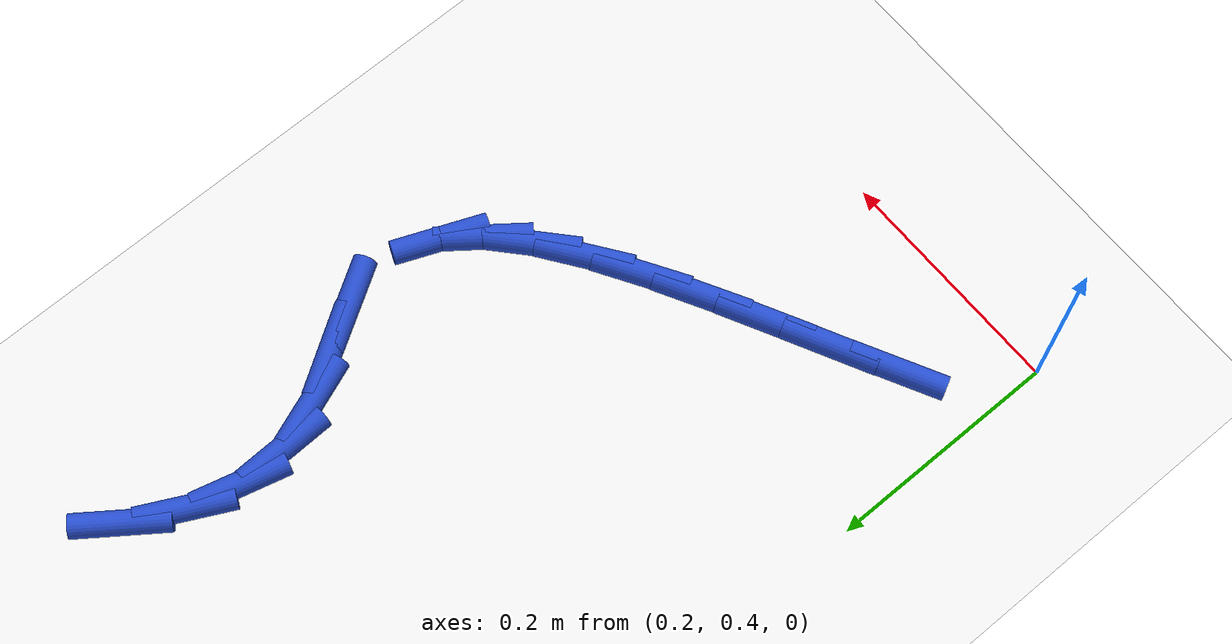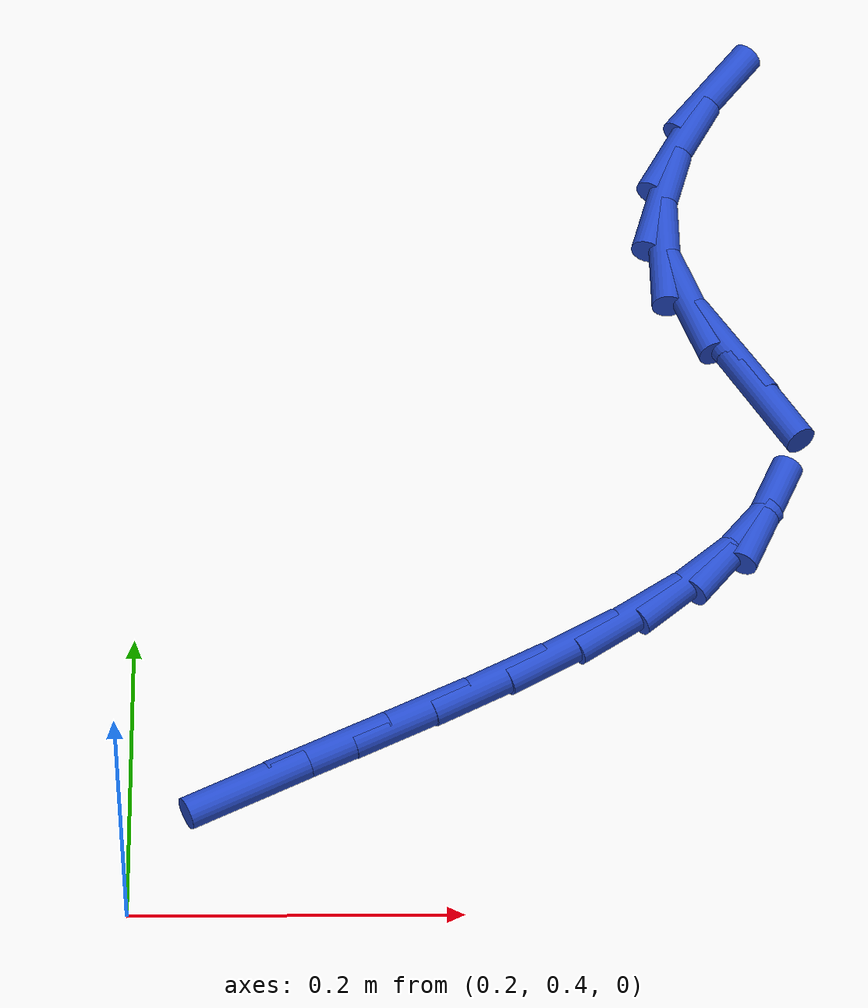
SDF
<sdf version="1.6">
 <world name="default">
  <model name="ground_plane">
   <static>1</static>
   <link name="link">
    <collision name="collision">
     <geometry><plane><normal>0 0 1</normal><size>100 100</size></plane></geometry>
     <surface><friction><ode><mu>100</mu><mu2>50</mu2></ode></friction></surface>
    </collision>
    <visual name="visual">
     <cast_shadows>0</cast_shadows>
     <geometry><plane><normal>0 0 1</normal><size>100 100</size></plane></geometry>
     <material>
      <script><uri>file://media/materials/scripts/gazebo.material</uri><name>Gazebo/WhiteGlow</name></script>
     </material>
    </visual>
   </link>
  </model>
  <model name="line">
   <link name="link_13">
    <pose>0.26960427789794333 0.48480843248125693 0.01 0 1.57 0.48041396956076166</pose>
    <collision name="collision">
     <geometry><cylinder><radius>0.01</radius><length>0.08</length></cylinder></geometry>
    </collision>
    <visual name="visual">
     <material>
      <script><name>Gazebo/Blue</name><uri>file://media/materials/scripts/gazebo.material</uri></script>
     </material>
     <geometry><cylinder><radius>0.01</radius><length>0.08</length></cylinder></geometry>
    </visual>
   </link>
   <link name="link_14">
    <pose>0.31877890638796014 0.510435157128976 0.01 0 1.57 0.47163036350103893</pose>
    <collision name="collision">
     <geometry><cylinder><radius>0.01</radius><length>0.08</length></cylinder></geometry>
    </collision>
    <visual name="visual">
     <material>
      <script><name>Gazebo/Blue</name><uri>file://media/materials/scripts/gazebo.material</uri></script>
     </material>
     <geometry><cylinder><radius>0.01</radius><length>0.08</length></cylinder></geometry>
    </visual>
   </link>
   <link name="link_15">
    <pose>0.36762824926220367 0.5353492327480962 0.01 0 1.57 0.478228815170522</pose>
    <collision name="collision">
     <geometry><cylinder><radius>0.01</radius><length>0.08</length></cylinder></geometry>
    </collision>
    <visual name="visual">
     <material>
      <script><name>Gazebo/Blue</name><uri>file://media/materials/scripts/gazebo.material</uri></script>
     </material>
     <geometry><cylinder><radius>0.01</radius><length>0.08</length></cylinder></geometry>
    </visual>
   </link>
   <link name="link_16">
    <pose>0.4149065218295573 0.5598564773889724 0.01 0 1.57 0.5020217879897807</pose>
    <collision name="collision">
     <geometry><cylinder><radius>0.01</radius><length>0.08</length></cylinder></geometry>
    </collision>
    <visual name="visual">
     <material>
      <script><name>Gazebo/Blue</name><uri>file://media/materials/scripts/gazebo.material</uri></script>
     </material>
     <geometry><cylinder><radius>0.01</radius><length>0.08</length></cylinder></geometry>
    </visual>
   </link>
   <link name="link_17">
    <pose>0.4593679393989038 0.5842627091019592 0.01 0 1.57 0.5471585881664179</pose>
    <collision name="collision">
     <geometry><cylinder><radius>0.01</radius><length>0.08</length></cylinder></geometry>
    </collision>
    <visual name="visual">
     <material>
      <script><name>Gazebo/Blue</name><uri>file://media/materials/scripts/gazebo.material</uri></script>
     </material>
     <geometry><cylinder><radius>0.01</radius><length>0.08</length></cylinder></geometry>
    </visual>
   </link>
   <link name="link_18">
    <pose>0.4997667172791266 0.6088737459374117 0.01 0 1.57 0.6213265562585064</pose>
    <collision name="collision">
     <geometry><cylinder><radius>0.01</radius><length>0.08</length></cylinder></geometry>
    </collision>
    <visual name="visual">
     <material>
      <script><name>Gazebo/Blue</name><uri>file://media/materials/scripts/gazebo.material</uri></script>
     </material>
     <geometry><cylinder><radius>0.01</radius><length>0.08</length></cylinder></geometry>
    </visual>
   </link>
   <link name="link_19">
    <pose>0.5348570707791087 0.6339954059456848 0.01 0 1.57 0.7377412203850204</pose>
    <collision name="collision">
     <geometry><cylinder><radius>0.01</radius><length>0.08</length></cylinder></geometry>
    </collision>
    <visual name="visual">
     <material>
      <script><name>Gazebo/Blue</name><uri>file://media/materials/scripts/gazebo.material</uri></script>
     </material>
     <geometry><cylinder><radius>0.01</radius><length>0.08</length></cylinder></geometry>
    </visual>
   </link>
   <link name="link_20">
    <pose>0.5633932152077336 0.6599335071771335 0.01 0 1.57 0.9169493140732314</pose>
    <collision name="collision">
     <geometry><cylinder><radius>0.01</radius><length>0.08</length></cylinder></geometry>
    </collision>
    <visual name="visual">
     <material>
      <script><name>Gazebo/Blue</name><uri>file://media/materials/scripts/gazebo.material</uri></script>
     </material>
     <geometry><cylinder><radius>0.01</radius><length>0.08</length></cylinder></geometry>
    </visual>
   </link>
   <link name="link_21">
    <pose>0.584129365873884 0.6869938676821125 0.01 0 1.57 1.1813952420875953</pose>
    <collision name="collision">
     <geometry><cylinder><radius>0.01</radius><length>0.08</length></cylinder></geometry>
    </collision>
    <visual name="visual">
     <material>
      <script><name>Gazebo/Blue</name><uri>file://media/materials/scripts/gazebo.material</uri></script>
     </material>
     <geometry><cylinder><radius>0.01</radius><length>0.08</length></cylinder></geometry>
    </visual>
   </link>
   <link name="link_24">
    <pose>0.5870800083863215 0.777966685341781 0.01 0 1.57 -1.0187099531825432</pose>
    <collision name="collision">
     <geometry><cylinder><radius>0.01</radius><length>0.08</length></cylinder></geometry>
    </collision>
    <visual name="visual">
     <material>
      <script><name>Gazebo/Blue</name><uri>file://media/materials/scripts/gazebo.material</uri></script>
     </material>
     <geometry><cylinder><radius>0.01</radius><length>0.08</length></cylinder></geometry>
    </visual>
   </link>
   <link name="link_25">
    <pose>0.5657666882009622 0.8125673808134006 0.01 0 1.57 -1.0012533243651964</pose>
    <collision name="collision">
     <geometry><cylinder><radius>0.01</radius><length>0.08</length></cylinder></geometry>
    </collision>
    <visual name="visual">
     <material>
      <script><name>Gazebo/Blue</name><uri>file://media/materials/scripts/gazebo.material</uri></script>
     </material>
     <geometry><cylinder><radius>0.01</radius><length>0.08</length></cylinder></geometry>
    </visual>
   </link>
   <link name="link_26">
    <pose>0.5419448777534217 0.8497701263460653 0.01 0 1.57 -1.2080535619510553</pose>
    <collision name="collision">
     <geometry><cylinder><radius>0.01</radius><length>0.08</length></cylinder></geometry>
    </collision>
    <visual name="visual">
     <material>
      <script><name>Gazebo/Blue</name><uri>file://media/materials/scripts/gazebo.material</uri></script>
     </material>
     <geometry><cylinder><radius>0.01</radius><length>0.08</length></cylinder></geometry>
    </visual>
   </link>
   <link name="link_27">
    <pose>0.5267493477515651 0.8898070973601989 0.01 0 1.57 -1.5409106943662398</pose>
    <collision name="collision">
     <geometry><cylinder><radius>0.01</radius><length>0.08</length></cylinder></geometry>
    </collision>
    <visual name="visual">
     <material>
      <script><name>Gazebo/Blue</name><uri>file://media/materials/scripts/gazebo.material</uri></script>
     </material>
     <geometry><cylinder><radius>0.01</radius><length>0.08</length></cylinder></geometry>
    </visual>
   </link>
   <link name="link_28">
    <pose>0.5254777672054546 0.9323426520433903 0.01 0 1.57 1.3179245771623167</pose>
    <collision name="collision">
     <geometry><cylinder><radius>0.01</radius><length>0.08</length></cylinder></geometry>
    </collision>
    <visual name="visual">
     <material>
      <script><name>Gazebo/Blue</name><uri>file://media/materials/scripts/gazebo.material</uri></script>
     </material>
     <geometry><cylinder><radius>0.01</radius><length>0.08</length></cylinder></geometry>
    </visual>
   </link>
   <link name="link_29">
    <pose>0.5368630202605317 0.9764026899581894 0.01 0 1.57 1.1046869276985878</pose>
    <collision name="collision">
     <geometry><cylinder><radius>0.01</radius><length>0.08</length></cylinder></geometry>
    </collision>
    <visual name="visual">
     <material>
      <script><name>Gazebo/Blue</name><uri>file://media/materials/scripts/gazebo.material</uri></script>
     </material>
     <geometry><cylinder><radius>0.01</radius><length>0.08</length></cylinder></geometry>
    </visual>
   </link>
   <link name="link_30">
    <pose>0.5592885813045332 1.0209791287959828 0.01 0 1.57 0.9451569806853171</pose>
    <collision name="collision">
     <geometry><cylinder><radius>0.01</radius><length>0.08</length></cylinder></geometry>
    </collision>
    <visual name="visual">
     <material>
      <script><name>Gazebo/Blue</name><uri>file://media/materials/scripts/gazebo.material</uri></script>
     </material>
     <geometry><cylinder><radius>0.01</radius><length>0.08</length></cylinder></geometry>
    </visual>
   </link>
  </model>
 </world>
</sdf>
